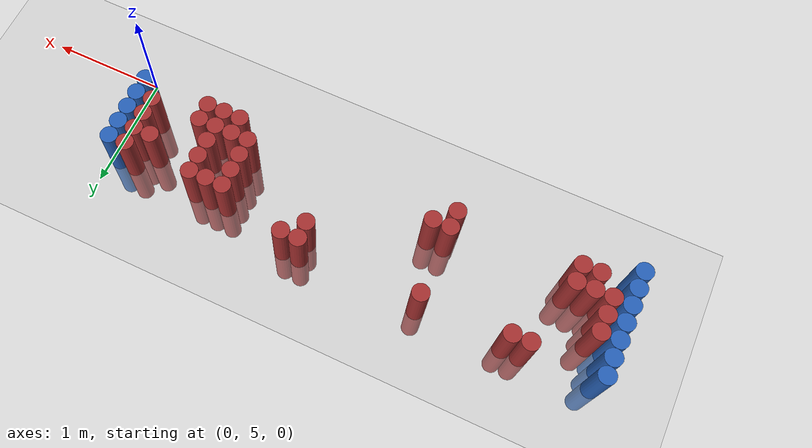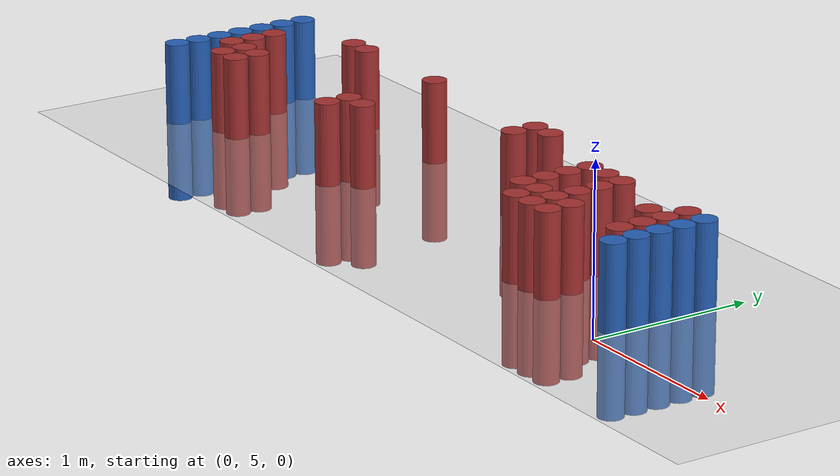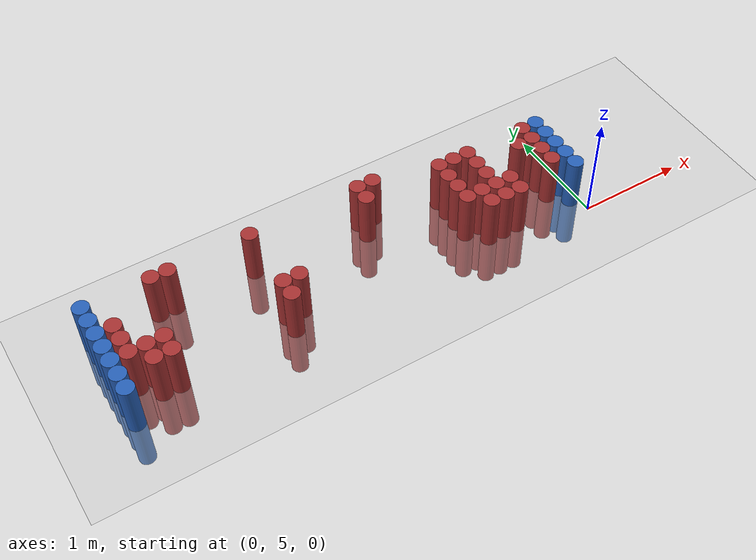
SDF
<sdf version="1.6">
 <world name="default">
  <model name="ground_plane">
   <static>1</static>
   <link name="link">
    <collision name="collision">
     <geometry><plane><normal>0 0 1</normal><size>100 100</size></plane></geometry>
     <surface><friction><ode><mu>100</mu><mu2>50</mu2></ode></friction></surface>
    </collision>
    <visual name="visual">
     <cast_shadows>0</cast_shadows>
     <geometry><plane><normal>0 0 1</normal><size>100 100</size></plane></geometry>
     <material>
      <script><uri>file://media/materials/scripts/gazebo.material</uri><name>Gazebo/Grey</name></script>
     </material>
    </visual>
   </link>
  </model>
  <model name="unit_cylinder_95">
   <static>1</static>
   <pose>-4.425000 5.025000 0.000000 0.000000 0.000000 0.000000</pose>
   <link name="link">
    <inertial>
     <mass>1</mass>
     <inertia><ixx>0.145833</ixx><ixy>0</ixy><ixz>0</ixz><iyy>0.145833</iyy><iyz>0</iyz><izz>0.125</izz></inertia>
    </inertial>
    <collision name="collision">
     <geometry><cylinder><radius>0.075000</radius><length>1</length></cylinder></geometry>
    </collision>
    <visual name="visual">
     <geometry><cylinder><radius>0.075000</radius><length>1</length></cylinder></geometry>
     <material>
      <ambient>0.152000 0.379000 0.720000 1</ambient>
      <diffuse>0.152000 0.379000 0.720000 1</diffuse>
     </material>
     <material>
      <script><name>Gazebo/Grey</name><uri>file://media/materials/scripts/gazebo.material</uri></script>
     </material>
    </visual>
   </link>
  </model>
  <model name="unit_cylinder_96">
   <static>1</static>
   <pose>-4.425000 5.175000 0.000000 0.000000 0.000000 0.000000</pose>
   <link name="link">
    <inertial>
     <mass>1</mass>
     <inertia><ixx>0.145833</ixx><ixy>0</ixy><ixz>0</ixz><iyy>0.145833</iyy><iyz>0</iyz><izz>0.125</izz></inertia>
    </inertial>
    <collision name="collision">
     <geometry><cylinder><radius>0.075000</radius><length>1</length></cylinder></geometry>
    </collision>
    <visual name="visual">
     <geometry><cylinder><radius>0.075000</radius><length>1</length></cylinder></geometry>
     <material>
      <ambient>0.152000 0.379000 0.720000 1</ambient>
      <diffuse>0.152000 0.379000 0.720000 1</diffuse>
     </material>
     <material>
      <script><name>Gazebo/Grey</name><uri>file://media/materials/scripts/gazebo.material</uri></script>
     </material>
    </visual>
   </link>
  </model>
  <model name="unit_cylinder_97">
   <static>1</static>
   <pose>-4.425000 5.325000 0.000000 0.000000 0.000000 0.000000</pose>
   <link name="link">
    <inertial>
     <mass>1</mass>
     <inertia><ixx>0.145833</ixx><ixy>0</ixy><ixz>0</ixz><iyy>0.145833</iyy><iyz>0</iyz><izz>0.125</izz></inertia>
    </inertial>
    <collision name="collision">
     <geometry><cylinder><radius>0.075000</radius><length>1</length></cylinder></geometry>
    </collision>
    <visual name="visual">
     <geometry><cylinder><radius>0.075000</radius><length>1</length></cylinder></geometry>
     <material>
      <ambient>0.152000 0.379000 0.720000 1</ambient>
      <diffuse>0.152000 0.379000 0.720000 1</diffuse>
     </material>
     <material>
      <script><name>Gazebo/Grey</name><uri>file://media/materials/scripts/gazebo.material</uri></script>
     </material>
    </visual>
   </link>
  </model>
  <model name="unit_cylinder_98">
   <static>1</static>
   <pose>-4.425000 5.475000 0.000000 0.000000 0.000000 0.000000</pose>
   <link name="link">
    <inertial>
     <mass>1</mass>
     <inertia><ixx>0.145833</ixx><ixy>0</ixy><ixz>0</ixz><iyy>0.145833</iyy><iyz>0</iyz><izz>0.125</izz></inertia>
    </inertial>
    <collision name="collision">
     <geometry><cylinder><radius>0.075000</radius><length>1</length></cylinder></geometry>
    </collision>
    <visual name="visual">
     <geometry><cylinder><radius>0.075000</radius><length>1</length></cylinder></geometry>
     <material>
      <ambient>0.152000 0.379000 0.720000 1</ambient>
      <diffuse>0.152000 0.379000 0.720000 1</diffuse>
     </material>
     <material>
      <script><name>Gazebo/Grey</name><uri>file://media/materials/scripts/gazebo.material</uri></script>
     </material>
    </visual>
   </link>
  </model>
  <model name="unit_cylinder_99">
   <static>1</static>
   <pose>-4.425000 5.625000 0.000000 0.000000 0.000000 0.000000</pose>
   <link name="link">
    <inertial>
     <mass>1</mass>
     <inertia><ixx>0.145833</ixx><ixy>0</ixy><ixz>0</ixz><iyy>0.145833</iyy><iyz>0</iyz><izz>0.125</izz></inertia>
    </inertial>
    <collision name="collision">
     <geometry><cylinder><radius>0.075000</radius><length>1</length></cylinder></geometry>
    </collision>
    <visual name="visual">
     <geometry><cylinder><radius>0.075000</radius><length>1</length></cylinder></geometry>
     <material>
      <ambient>0.152000 0.379000 0.720000 1</ambient>
      <diffuse>0.152000 0.379000 0.720000 1</diffuse>
     </material>
     <material>
      <script><name>Gazebo/Grey</name><uri>file://media/materials/scripts/gazebo.material</uri></script>
     </material>
    </visual>
   </link>
  </model>
  <model name="unit_cylinder_100">
   <static>1</static>
   <pose>-4.425000 5.775000 0.000000 0.000000 0.000000 0.000000</pose>
   <link name="link">
    <inertial>
     <mass>1</mass>
     <inertia><ixx>0.145833</ixx><ixy>0</ixy><ixz>0</ixz><iyy>0.145833</iyy><iyz>0</iyz><izz>0.125</izz></inertia>
    </inertial>
    <collision name="collision">
     <geometry><cylinder><radius>0.075000</radius><length>1</length></cylinder></geometry>
    </collision>
    <visual name="visual">
     <geometry><cylinder><radius>0.075000</radius><length>1</length></cylinder></geometry>
     <material>
      <ambient>0.152000 0.379000 0.720000 1</ambient>
      <diffuse>0.152000 0.379000 0.720000 1</diffuse>
     </material>
     <material>
      <script><name>Gazebo/Grey</name><uri>file://media/materials/scripts/gazebo.material</uri></script>
     </material>
    </visual>
   </link>
  </model>
  <model name="unit_cylinder_101">
   <static>1</static>
   <pose>-4.425000 5.925000 0.000000 0.000000 0.000000 0.000000</pose>
   <link name="link">
    <inertial>
     <mass>1</mass>
     <inertia><ixx>0.145833</ixx><ixy>0</ixy><ixz>0</ixz><iyy>0.145833</iyy><iyz>0</iyz><izz>0.125</izz></inertia>
    </inertial>
    <collision name="collision">
     <geometry><cylinder><radius>0.075000</radius><length>1</length></cylinder></geometry>
    </collision>
    <visual name="visual">
     <geometry><cylinder><radius>0.075000</radius><length>1</length></cylinder></geometry>
     <material>
      <ambient>0.152000 0.379000 0.720000 1</ambient>
      <diffuse>0.152000 0.379000 0.720000 1</diffuse>
     </material>
     <material>
      <script><name>Gazebo/Grey</name><uri>file://media/materials/scripts/gazebo.material</uri></script>
     </material>
    </visual>
   </link>
  </model>
  <model name="unit_cylinder_126">
   <static>1</static>
   <pose>-4.275000 5.325000 0.000000 0.000000 0.000000 0.000000</pose>
   <link name="link">
    <inertial>
     <mass>1</mass>
     <inertia><ixx>0.145833</ixx><ixy>0</ixy><ixz>0</ixz><iyy>0.145833</iyy><iyz>0</iyz><izz>0.125</izz></inertia>
    </inertial>
    <collision name="collision">
     <geometry><cylinder><radius>0.075000</radius><length>1</length></cylinder></geometry>
    </collision>
    <visual name="visual">
     <geometry><cylinder><radius>0.075000</radius><length>1</length></cylinder></geometry>
     <material>
      <ambient>0.648000 0.192000 0.192000 1</ambient>
      <diffuse>0.648000 0.192000 0.192000 1</diffuse>
     </material>
     <material>
      <script><name>Gazebo/Grey</name><uri>file://media/materials/scripts/gazebo.material</uri></script>
     </material>
    </visual>
   </link>
  </model>
  <model name="unit_cylinder_127">
   <static>1</static>
   <pose>-4.275000 5.475000 0.000000 0.000000 0.000000 0.000000</pose>
   <link name="link">
    <inertial>
     <mass>1</mass>
     <inertia><ixx>0.145833</ixx><ixy>0</ixy><ixz>0</ixz><iyy>0.145833</iyy><iyz>0</iyz><izz>0.125</izz></inertia>
    </inertial>
    <collision name="collision">
     <geometry><cylinder><radius>0.075000</radius><length>1</length></cylinder></geometry>
    </collision>
    <visual name="visual">
     <geometry><cylinder><radius>0.075000</radius><length>1</length></cylinder></geometry>
     <material>
      <ambient>0.648000 0.192000 0.192000 1</ambient>
      <diffuse>0.648000 0.192000 0.192000 1</diffuse>
     </material>
     <material>
      <script><name>Gazebo/Grey</name><uri>file://media/materials/scripts/gazebo.material</uri></script>
     </material>
    </visual>
   </link>
  </model>
  <model name="unit_cylinder_128">
   <static>1</static>
   <pose>-4.275000 5.625000 0.000000 0.000000 0.000000 0.000000</pose>
   <link name="link">
    <inertial>
     <mass>1</mass>
     <inertia><ixx>0.145833</ixx><ixy>0</ixy><ixz>0</ixz><iyy>0.145833</iyy><iyz>0</iyz><izz>0.125</izz></inertia>
    </inertial>
    <collision name="collision">
     <geometry><cylinder><radius>0.075000</radius><length>1</length></cylinder></geometry>
    </collision>
    <visual name="visual">
     <geometry><cylinder><radius>0.075000</radius><length>1</length></cylinder></geometry>
     <material>
      <ambient>0.648000 0.192000 0.192000 1</ambient>
      <diffuse>0.648000 0.192000 0.192000 1</diffuse>
     </material>
     <material>
      <script><name>Gazebo/Grey</name><uri>file://media/materials/scripts/gazebo.material</uri></script>
     </material>
    </visual>
   </link>
  </model>
  <model name="unit_cylinder_148">
   <static>1</static>
   <pose>-4.125000 5.175000 0.000000 0.000000 0.000000 0.000000</pose>
   <link name="link">
    <inertial>
     <mass>1</mass>
     <inertia><ixx>0.145833</ixx><ixy>0</ixy><ixz>0</ixz><iyy>0.145833</iyy><iyz>0</iyz><izz>0.125</izz></inertia>
    </inertial>
    <collision name="collision">
     <geometry><cylinder><radius>0.075000</radius><length>1</length></cylinder></geometry>
    </collision>
    <visual name="visual">
     <geometry><cylinder><radius>0.075000</radius><length>1</length></cylinder></geometry>
     <material>
      <ambient>0.648000 0.192000 0.192000 1</ambient>
      <diffuse>0.648000 0.192000 0.192000 1</diffuse>
     </material>
     <material>
      <script><name>Gazebo/Grey</name><uri>file://media/materials/scripts/gazebo.material</uri></script>
     </material>
    </visual>
   </link>
  </model>
  <model name="unit_cylinder_149">
   <static>1</static>
   <pose>-4.125000 5.325000 0.000000 0.000000 0.000000 0.000000</pose>
   <link name="link">
    <inertial>
     <mass>1</mass>
     <inertia><ixx>0.145833</ixx><ixy>0</ixy><ixz>0</ixz><iyy>0.145833</iyy><iyz>0</iyz><izz>0.125</izz></inertia>
    </inertial>
    <collision name="collision">
     <geometry><cylinder><radius>0.075000</radius><length>1</length></cylinder></geometry>
    </collision>
    <visual name="visual">
     <geometry><cylinder><radius>0.075000</radius><length>1</length></cylinder></geometry>
     <material>
      <ambient>0.648000 0.192000 0.192000 1</ambient>
      <diffuse>0.648000 0.192000 0.192000 1</diffuse>
     </material>
     <material>
      <script><name>Gazebo/Grey</name><uri>file://media/materials/scripts/gazebo.material</uri></script>
     </material>
    </visual>
   </link>
  </model>
  <model name="unit_cylinder_154">
   <static>1</static>
   <pose>-3.975000 5.175000 0.000000 0.000000 0.000000 0.000000</pose>
   <link name="link">
    <inertial>
     <mass>1</mass>
     <inertia><ixx>0.145833</ixx><ixy>0</ixy><ixz>0</ixz><iyy>0.145833</iyy><iyz>0</iyz><izz>0.125</izz></inertia>
    </inertial>
    <collision name="collision">
     <geometry><cylinder><radius>0.075000</radius><length>1</length></cylinder></geometry>
    </collision>
    <visual name="visual">
     <geometry><cylinder><radius>0.075000</radius><length>1</length></cylinder></geometry>
     <material>
      <ambient>0.648000 0.192000 0.192000 1</ambient>
      <diffuse>0.648000 0.192000 0.192000 1</diffuse>
     </material>
     <material>
      <script><name>Gazebo/Grey</name><uri>file://media/materials/scripts/gazebo.material</uri></script>
     </material>
    </visual>
   </link>
  </model>
  <model name="unit_cylinder_155">
   <static>1</static>
   <pose>-3.975000 5.325000 0.000000 0.000000 0.000000 0.000000</pose>
   <link name="link">
    <inertial>
     <mass>1</mass>
     <inertia><ixx>0.145833</ixx><ixy>0</ixy><ixz>0</ixz><iyy>0.145833</iyy><iyz>0</iyz><izz>0.125</izz></inertia>
    </inertial>
    <collision name="collision">
     <geometry><cylinder><radius>0.075000</radius><length>1</length></cylinder></geometry>
    </collision>
    <visual name="visual">
     <geometry><cylinder><radius>0.075000</radius><length>1</length></cylinder></geometry>
     <material>
      <ambient>0.648000 0.192000 0.192000 1</ambient>
      <diffuse>0.648000 0.192000 0.192000 1</diffuse>
     </material>
     <material>
      <script><name>Gazebo/Grey</name><uri>file://media/materials/scripts/gazebo.material</uri></script>
     </material>
    </visual>
   </link>
  </model>
  <model name="unit_cylinder_160">
   <static>1</static>
   <pose>-3.825000 5.925000 0.000000 0.000000 0.000000 0.000000</pose>
   <link name="link">
    <inertial>
     <mass>1</mass>
     <inertia><ixx>0.145833</ixx><ixy>0</ixy><ixz>0</ixz><iyy>0.145833</iyy><iyz>0</iyz><izz>0.125</izz></inertia>
    </inertial>
    <collision name="collision">
     <geometry><cylinder><radius>0.075000</radius><length>1</length></cylinder></geometry>
    </collision>
    <visual name="visual">
     <geometry><cylinder><radius>0.075000</radius><length>1</length></cylinder></geometry>
     <material>
      <ambient>0.648000 0.192000 0.192000 1</ambient>
      <diffuse>0.648000 0.192000 0.192000 1</diffuse>
     </material>
     <material>
      <script><name>Gazebo/Grey</name><uri>file://media/materials/scripts/gazebo.material</uri></script>
     </material>
    </visual>
   </link>
  </model>
  <model name="unit_cylinder_170">
   <static>1</static>
   <pose>-3.675000 5.925000 0.000000 0.000000 0.000000 0.000000</pose>
   <link name="link">
    <inertial>
     <mass>1</mass>
     <inertia><ixx>0.145833</ixx><ixy>0</ixy><ixz>0</ixz><iyy>0.145833</iyy><iyz>0</iyz><izz>0.125</izz></inertia>
    </inertial>
    <collision name="collision">
     <geometry><cylinder><radius>0.075000</radius><length>1</length></cylinder></geometry>
    </collision>
    <visual name="visual">
     <geometry><cylinder><radius>0.075000</radius><length>1</length></cylinder></geometry>
     <material>
      <ambient>0.648000 0.192000 0.192000 1</ambient>
      <diffuse>0.648000 0.192000 0.192000 1</diffuse>
     </material>
     <material>
      <script><name>Gazebo/Grey</name><uri>file://media/materials/scripts/gazebo.material</uri></script>
     </material>
    </visual>
   </link>
  </model>
  <model name="unit_cylinder_191">
   <static>1</static>
   <pose>-2.925000 5.175000 0.000000 0.000000 0.000000 0.000000</pose>
   <link name="link">
    <inertial>
     <mass>1</mass>
     <inertia><ixx>0.145833</ixx><ixy>0</ixy><ixz>0</ixz><iyy>0.145833</iyy><iyz>0</iyz><izz>0.125</izz></inertia>
    </inertial>
    <collision name="collision">
     <geometry><cylinder><radius>0.075000</radius><length>1</length></cylinder></geometry>
    </collision>
    <visual name="visual">
     <geometry><cylinder><radius>0.075000</radius><length>1</length></cylinder></geometry>
     <material>
      <ambient>0.648000 0.192000 0.192000 1</ambient>
      <diffuse>0.648000 0.192000 0.192000 1</diffuse>
     </material>
     <material>
      <script><name>Gazebo/Grey</name><uri>file://media/materials/scripts/gazebo.material</uri></script>
     </material>
    </visual>
   </link>
  </model>
  <model name="unit_cylinder_192">
   <static>1</static>
   <pose>-2.925000 5.325000 0.000000 0.000000 0.000000 0.000000</pose>
   <link name="link">
    <inertial>
     <mass>1</mass>
     <inertia><ixx>0.145833</ixx><ixy>0</ixy><ixz>0</ixz><iyy>0.145833</iyy><iyz>0</iyz><izz>0.125</izz></inertia>
    </inertial>
    <collision name="collision">
     <geometry><cylinder><radius>0.075000</radius><length>1</length></cylinder></geometry>
    </collision>
    <visual name="visual">
     <geometry><cylinder><radius>0.075000</radius><length>1</length></cylinder></geometry>
     <material>
      <ambient>0.648000 0.192000 0.192000 1</ambient>
      <diffuse>0.648000 0.192000 0.192000 1</diffuse>
     </material>
     <material>
      <script><name>Gazebo/Grey</name><uri>file://media/materials/scripts/gazebo.material</uri></script>
     </material>
    </visual>
   </link>
  </model>
  <model name="unit_cylinder_193">
   <static>1</static>
   <pose>-2.925000 5.925000 0.000000 0.000000 0.000000 0.000000</pose>
   <link name="link">
    <inertial>
     <mass>1</mass>
     <inertia><ixx>0.145833</ixx><ixy>0</ixy><ixz>0</ixz><iyy>0.145833</iyy><iyz>0</iyz><izz>0.125</izz></inertia>
    </inertial>
    <collision name="collision">
     <geometry><cylinder><radius>0.075000</radius><length>1</length></cylinder></geometry>
    </collision>
    <visual name="visual">
     <geometry><cylinder><radius>0.075000</radius><length>1</length></cylinder></geometry>
     <material>
      <ambient>0.648000 0.192000 0.192000 1</ambient>
      <diffuse>0.648000 0.192000 0.192000 1</diffuse>
     </material>
     <material>
      <script><name>Gazebo/Grey</name><uri>file://media/materials/scripts/gazebo.material</uri></script>
     </material>
    </visual>
   </link>
  </model>
  <model name="unit_cylinder_195">
   <static>1</static>
   <pose>-2.775000 5.325000 0.000000 0.000000 0.000000 0.000000</pose>
   <link name="link">
    <inertial>
     <mass>1</mass>
     <inertia><ixx>0.145833</ixx><ixy>0</ixy><ixz>0</ixz><iyy>0.145833</iyy><iyz>0</iyz><izz>0.125</izz></inertia>
    </inertial>
    <collision name="collision">
     <geometry><cylinder><radius>0.075000</radius><length>1</length></cylinder></geometry>
    </collision>
    <visual name="visual">
     <geometry><cylinder><radius>0.075000</radius><length>1</length></cylinder></geometry>
     <material>
      <ambient>0.648000 0.192000 0.192000 1</ambient>
      <diffuse>0.648000 0.192000 0.192000 1</diffuse>
     </material>
     <material>
      <script><name>Gazebo/Grey</name><uri>file://media/materials/scripts/gazebo.material</uri></script>
     </material>
    </visual>
   </link>
  </model>
  <model name="unit_cylinder_206">
   <static>1</static>
   <pose>-1.875000 5.775000 0.000000 0.000000 0.000000 0.000000</pose>
   <link name="link">
    <inertial>
     <mass>1</mass>
     <inertia><ixx>0.145833</ixx><ixy>0</ixy><ixz>0</ixz><iyy>0.145833</iyy><iyz>0</iyz><izz>0.125</izz></inertia>
    </inertial>
    <collision name="collision">
     <geometry><cylinder><radius>0.075000</radius><length>1</length></cylinder></geometry>
    </collision>
    <visual name="visual">
     <geometry><cylinder><radius>0.075000</radius><length>1</length></cylinder></geometry>
     <material>
      <ambient>0.648000 0.192000 0.192000 1</ambient>
      <diffuse>0.648000 0.192000 0.192000 1</diffuse>
     </material>
     <material>
      <script><name>Gazebo/Grey</name><uri>file://media/materials/scripts/gazebo.material</uri></script>
     </material>
    </visual>
   </link>
  </model>
  <model name="unit_cylinder_207">
   <static>1</static>
   <pose>-1.875000 5.925000 0.000000 0.000000 0.000000 0.000000</pose>
   <link name="link">
    <inertial>
     <mass>1</mass>
     <inertia><ixx>0.145833</ixx><ixy>0</ixy><ixz>0</ixz><iyy>0.145833</iyy><iyz>0</iyz><izz>0.125</izz></inertia>
    </inertial>
    <collision name="collision">
     <geometry><cylinder><radius>0.075000</radius><length>1</length></cylinder></geometry>
    </collision>
    <visual name="visual">
     <geometry><cylinder><radius>0.075000</radius><length>1</length></cylinder></geometry>
     <material>
      <ambient>0.648000 0.192000 0.192000 1</ambient>
      <diffuse>0.648000 0.192000 0.192000 1</diffuse>
     </material>
     <material>
      <script><name>Gazebo/Grey</name><uri>file://media/materials/scripts/gazebo.material</uri></script>
     </material>
    </visual>
   </link>
  </model>
  <model name="unit_cylinder_212">
   <static>1</static>
   <pose>-1.725000 5.925000 0.000000 0.000000 0.000000 0.000000</pose>
   <link name="link">
    <inertial>
     <mass>1</mass>
     <inertia><ixx>0.145833</ixx><ixy>0</ixy><ixz>0</ixz><iyy>0.145833</iyy><iyz>0</iyz><izz>0.125</izz></inertia>
    </inertial>
    <collision name="collision">
     <geometry><cylinder><radius>0.075000</radius><length>1</length></cylinder></geometry>
    </collision>
    <visual name="visual">
     <geometry><cylinder><radius>0.075000</radius><length>1</length></cylinder></geometry>
     <material>
      <ambient>0.648000 0.192000 0.192000 1</ambient>
      <diffuse>0.648000 0.192000 0.192000 1</diffuse>
     </material>
     <material>
      <script><name>Gazebo/Grey</name><uri>file://media/materials/scripts/gazebo.material</uri></script>
     </material>
    </visual>
   </link>
  </model>
  <model name="unit_cylinder_237">
   <static>1</static>
   <pose>-1.125000 5.325000 0.000000 0.000000 0.000000 0.000000</pose>
   <link name="link">
    <inertial>
     <mass>1</mass>
     <inertia><ixx>0.145833</ixx><ixy>0</ixy><ixz>0</ixz><iyy>0.145833</iyy><iyz>0</iyz><izz>0.125</izz></inertia>
    </inertial>
    <collision name="collision">
     <geometry><cylinder><radius>0.075000</radius><length>1</length></cylinder></geometry>
    </collision>
    <visual name="visual">
     <geometry><cylinder><radius>0.075000</radius><length>1</length></cylinder></geometry>
     <material>
      <ambient>0.648000 0.192000 0.192000 1</ambient>
      <diffuse>0.648000 0.192000 0.192000 1</diffuse>
     </material>
     <material>
      <script><name>Gazebo/Grey</name><uri>file://media/materials/scripts/gazebo.material</uri></script>
     </material>
    </visual>
   </link>
  </model>
  <model name="unit_cylinder_238">
   <static>1</static>
   <pose>-1.125000 5.475000 0.000000 0.000000 0.000000 0.000000</pose>
   <link name="link">
    <inertial>
     <mass>1</mass>
     <inertia><ixx>0.145833</ixx><ixy>0</ixy><ixz>0</ixz><iyy>0.145833</iyy><iyz>0</iyz><izz>0.125</izz></inertia>
    </inertial>
    <collision name="collision">
     <geometry><cylinder><radius>0.075000</radius><length>1</length></cylinder></geometry>
    </collision>
    <visual name="visual">
     <geometry><cylinder><radius>0.075000</radius><length>1</length></cylinder></geometry>
     <material>
      <ambient>0.648000 0.192000 0.192000 1</ambient>
      <diffuse>0.648000 0.192000 0.192000 1</diffuse>
     </material>
     <material>
      <script><name>Gazebo/Grey</name><uri>file://media/materials/scripts/gazebo.material</uri></script>
     </material>
    </visual>
   </link>
  </model>
  <model name="unit_cylinder_239">
   <static>1</static>
   <pose>-1.125000 5.625000 0.000000 0.000000 0.000000 0.000000</pose>
   <link name="link">
    <inertial>
     <mass>1</mass>
     <inertia><ixx>0.145833</ixx><ixy>0</ixy><ixz>0</ixz><iyy>0.145833</iyy><iyz>0</iyz><izz>0.125</izz></inertia>
    </inertial>
    <collision name="collision">
     <geometry><cylinder><radius>0.075000</radius><length>1</length></cylinder></geometry>
    </collision>
    <visual name="visual">
     <geometry><cylinder><radius>0.075000</radius><length>1</length></cylinder></geometry>
     <material>
      <ambient>0.648000 0.192000 0.192000 1</ambient>
      <diffuse>0.648000 0.192000 0.192000 1</diffuse>
     </material>
     <material>
      <script><name>Gazebo/Grey</name><uri>file://media/materials/scripts/gazebo.material</uri></script>
     </material>
    </visual>
   </link>
  </model>
  <model name="unit_cylinder_240">
   <static>1</static>
   <pose>-1.125000 5.775000 0.000000 0.000000 0.000000 0.000000</pose>
   <link name="link">
    <inertial>
     <mass>1</mass>
     <inertia><ixx>0.145833</ixx><ixy>0</ixy><ixz>0</ixz><iyy>0.145833</iyy><iyz>0</iyz><izz>0.125</izz></inertia>
    </inertial>
    <collision name="collision">
     <geometry><cylinder><radius>0.075000</radius><length>1</length></cylinder></geometry>
    </collision>
    <visual name="visual">
     <geometry><cylinder><radius>0.075000</radius><length>1</length></cylinder></geometry>
     <material>
      <ambient>0.648000 0.192000 0.192000 1</ambient>
      <diffuse>0.648000 0.192000 0.192000 1</diffuse>
     </material>
     <material>
      <script><name>Gazebo/Grey</name><uri>file://media/materials/scripts/gazebo.material</uri></script>
     </material>
    </visual>
   </link>
  </model>
  <model name="unit_cylinder_249">
   <static>1</static>
   <pose>-0.975000 5.175000 0.000000 0.000000 0.000000 0.000000</pose>
   <link name="link">
    <inertial>
     <mass>1</mass>
     <inertia><ixx>0.145833</ixx><ixy>0</ixy><ixz>0</ixz><iyy>0.145833</iyy><iyz>0</iyz><izz>0.125</izz></inertia>
    </inertial>
    <collision name="collision">
     <geometry><cylinder><radius>0.075000</radius><length>1</length></cylinder></geometry>
    </collision>
    <visual name="visual">
     <geometry><cylinder><radius>0.075000</radius><length>1</length></cylinder></geometry>
     <material>
      <ambient>0.648000 0.192000 0.192000 1</ambient>
      <diffuse>0.648000 0.192000 0.192000 1</diffuse>
     </material>
     <material>
      <script><name>Gazebo/Grey</name><uri>file://media/materials/scripts/gazebo.material</uri></script>
     </material>
    </visual>
   </link>
  </model>
  <model name="unit_cylinder_250">
   <static>1</static>
   <pose>-0.975000 5.325000 0.000000 0.000000 0.000000 0.000000</pose>
   <link name="link">
    <inertial>
     <mass>1</mass>
     <inertia><ixx>0.145833</ixx><ixy>0</ixy><ixz>0</ixz><iyy>0.145833</iyy><iyz>0</iyz><izz>0.125</izz></inertia>
    </inertial>
    <collision name="collision">
     <geometry><cylinder><radius>0.075000</radius><length>1</length></cylinder></geometry>
    </collision>
    <visual name="visual">
     <geometry><cylinder><radius>0.075000</radius><length>1</length></cylinder></geometry>
     <material>
      <ambient>0.648000 0.192000 0.192000 1</ambient>
      <diffuse>0.648000 0.192000 0.192000 1</diffuse>
     </material>
     <material>
      <script><name>Gazebo/Grey</name><uri>file://media/materials/scripts/gazebo.material</uri></script>
     </material>
    </visual>
   </link>
  </model>
  <model name="unit_cylinder_251">
   <static>1</static>
   <pose>-0.975000 5.775000 0.000000 0.000000 0.000000 0.000000</pose>
   <link name="link">
    <inertial>
     <mass>1</mass>
     <inertia><ixx>0.145833</ixx><ixy>0</ixy><ixz>0</ixz><iyy>0.145833</iyy><iyz>0</iyz><izz>0.125</izz></inertia>
    </inertial>
    <collision name="collision">
     <geometry><cylinder><radius>0.075000</radius><length>1</length></cylinder></geometry>
    </collision>
    <visual name="visual">
     <geometry><cylinder><radius>0.075000</radius><length>1</length></cylinder></geometry>
     <material>
      <ambient>0.648000 0.192000 0.192000 1</ambient>
      <diffuse>0.648000 0.192000 0.192000 1</diffuse>
     </material>
     <material>
      <script><name>Gazebo/Grey</name><uri>file://media/materials/scripts/gazebo.material</uri></script>
     </material>
    </visual>
   </link>
  </model>
  <model name="unit_cylinder_264">
   <static>1</static>
   <pose>-0.825000 5.175000 0.000000 0.000000 0.000000 0.000000</pose>
   <link name="link">
    <inertial>
     <mass>1</mass>
     <inertia><ixx>0.145833</ixx><ixy>0</ixy><ixz>0</ixz><iyy>0.145833</iyy><iyz>0</iyz><izz>0.125</izz></inertia>
    </inertial>
    <collision name="collision">
     <geometry><cylinder><radius>0.075000</radius><length>1</length></cylinder></geometry>
    </collision>
    <visual name="visual">
     <geometry><cylinder><radius>0.075000</radius><length>1</length></cylinder></geometry>
     <material>
      <ambient>0.648000 0.192000 0.192000 1</ambient>
      <diffuse>0.648000 0.192000 0.192000 1</diffuse>
     </material>
     <material>
      <script><name>Gazebo/Grey</name><uri>file://media/materials/scripts/gazebo.material</uri></script>
     </material>
    </visual>
   </link>
  </model>
  <model name="unit_cylinder_265">
   <static>1</static>
   <pose>-0.825000 5.325000 0.000000 0.000000 0.000000 0.000000</pose>
   <link name="link">
    <inertial>
     <mass>1</mass>
     <inertia><ixx>0.145833</ixx><ixy>0</ixy><ixz>0</ixz><iyy>0.145833</iyy><iyz>0</iyz><izz>0.125</izz></inertia>
    </inertial>
    <collision name="collision">
     <geometry><cylinder><radius>0.075000</radius><length>1</length></cylinder></geometry>
    </collision>
    <visual name="visual">
     <geometry><cylinder><radius>0.075000</radius><length>1</length></cylinder></geometry>
     <material>
      <ambient>0.648000 0.192000 0.192000 1</ambient>
      <diffuse>0.648000 0.192000 0.192000 1</diffuse>
     </material>
     <material>
      <script><name>Gazebo/Grey</name><uri>file://media/materials/scripts/gazebo.material</uri></script>
     </material>
    </visual>
   </link>
  </model>
  <model name="unit_cylinder_266">
   <static>1</static>
   <pose>-0.825000 5.475000 0.000000 0.000000 0.000000 0.000000</pose>
   <link name="link">
    <inertial>
     <mass>1</mass>
     <inertia><ixx>0.145833</ixx><ixy>0</ixy><ixz>0</ixz><iyy>0.145833</iyy><iyz>0</iyz><izz>0.125</izz></inertia>
    </inertial>
    <collision name="collision">
     <geometry><cylinder><radius>0.075000</radius><length>1</length></cylinder></geometry>
    </collision>
    <visual name="visual">
     <geometry><cylinder><radius>0.075000</radius><length>1</length></cylinder></geometry>
     <material>
      <ambient>0.648000 0.192000 0.192000 1</ambient>
      <diffuse>0.648000 0.192000 0.192000 1</diffuse>
     </material>
     <material>
      <script><name>Gazebo/Grey</name><uri>file://media/materials/scripts/gazebo.material</uri></script>
     </material>
    </visual>
   </link>
  </model>
  <model name="unit_cylinder_267">
   <static>1</static>
   <pose>-0.825000 5.625000 0.000000 0.000000 0.000000 0.000000</pose>
   <link name="link">
    <inertial>
     <mass>1</mass>
     <inertia><ixx>0.145833</ixx><ixy>0</ixy><ixz>0</ixz><iyy>0.145833</iyy><iyz>0</iyz><izz>0.125</izz></inertia>
    </inertial>
    <collision name="collision">
     <geometry><cylinder><radius>0.075000</radius><length>1</length></cylinder></geometry>
    </collision>
    <visual name="visual">
     <geometry><cylinder><radius>0.075000</radius><length>1</length></cylinder></geometry>
     <material>
      <ambient>0.648000 0.192000 0.192000 1</ambient>
      <diffuse>0.648000 0.192000 0.192000 1</diffuse>
     </material>
     <material>
      <script><name>Gazebo/Grey</name><uri>file://media/materials/scripts/gazebo.material</uri></script>
     </material>
    </visual>
   </link>
  </model>
  <model name="unit_cylinder_268">
   <static>1</static>
   <pose>-0.825000 5.775000 0.000000 0.000000 0.000000 0.000000</pose>
   <link name="link">
    <inertial>
     <mass>1</mass>
     <inertia><ixx>0.145833</ixx><ixy>0</ixy><ixz>0</ixz><iyy>0.145833</iyy><iyz>0</iyz><izz>0.125</izz></inertia>
    </inertial>
    <collision name="collision">
     <geometry><cylinder><radius>0.075000</radius><length>1</length></cylinder></geometry>
    </collision>
    <visual name="visual">
     <geometry><cylinder><radius>0.075000</radius><length>1</length></cylinder></geometry>
     <material>
      <ambient>0.648000 0.192000 0.192000 1</ambient>
      <diffuse>0.648000 0.192000 0.192000 1</diffuse>
     </material>
     <material>
      <script><name>Gazebo/Grey</name><uri>file://media/materials/scripts/gazebo.material</uri></script>
     </material>
    </visual>
   </link>
  </model>
  <model name="unit_cylinder_275">
   <static>1</static>
   <pose>-0.675000 5.175000 0.000000 0.000000 0.000000 0.000000</pose>
   <link name="link">
    <inertial>
     <mass>1</mass>
     <inertia><ixx>0.145833</ixx><ixy>0</ixy><ixz>0</ixz><iyy>0.145833</iyy><iyz>0</iyz><izz>0.125</izz></inertia>
    </inertial>
    <collision name="collision">
     <geometry><cylinder><radius>0.075000</radius><length>1</length></cylinder></geometry>
    </collision>
    <visual name="visual">
     <geometry><cylinder><radius>0.075000</radius><length>1</length></cylinder></geometry>
     <material>
      <ambient>0.648000 0.192000 0.192000 1</ambient>
      <diffuse>0.648000 0.192000 0.192000 1</diffuse>
     </material>
     <material>
      <script><name>Gazebo/Grey</name><uri>file://media/materials/scripts/gazebo.material</uri></script>
     </material>
    </visual>
   </link>
  </model>
  <model name="unit_cylinder_276">
   <static>1</static>
   <pose>-0.675000 5.325000 0.000000 0.000000 0.000000 0.000000</pose>
   <link name="link">
    <inertial>
     <mass>1</mass>
     <inertia><ixx>0.145833</ixx><ixy>0</ixy><ixz>0</ixz><iyy>0.145833</iyy><iyz>0</iyz><izz>0.125</izz></inertia>
    </inertial>
    <collision name="collision">
     <geometry><cylinder><radius>0.075000</radius><length>1</length></cylinder></geometry>
    </collision>
    <visual name="visual">
     <geometry><cylinder><radius>0.075000</radius><length>1</length></cylinder></geometry>
     <material>
      <ambient>0.648000 0.192000 0.192000 1</ambient>
      <diffuse>0.648000 0.192000 0.192000 1</diffuse>
     </material>
     <material>
      <script><name>Gazebo/Grey</name><uri>file://media/materials/scripts/gazebo.material</uri></script>
     </material>
    </visual>
   </link>
  </model>
  <model name="unit_cylinder_286">
   <static>1</static>
   <pose>-0.375000 5.625000 0.000000 0.000000 0.000000 0.000000</pose>
   <link name="link">
    <inertial>
     <mass>1</mass>
     <inertia><ixx>0.145833</ixx><ixy>0</ixy><ixz>0</ixz><iyy>0.145833</iyy><iyz>0</iyz><izz>0.125</izz></inertia>
    </inertial>
    <collision name="collision">
     <geometry><cylinder><radius>0.075000</radius><length>1</length></cylinder></geometry>
    </collision>
    <visual name="visual">
     <geometry><cylinder><radius>0.075000</radius><length>1</length></cylinder></geometry>
     <material>
      <ambient>0.648000 0.192000 0.192000 1</ambient>
      <diffuse>0.648000 0.192000 0.192000 1</diffuse>
     </material>
     <material>
      <script><name>Gazebo/Grey</name><uri>file://media/materials/scripts/gazebo.material</uri></script>
     </material>
    </visual>
   </link>
  </model>
  <model name="unit_cylinder_288">
   <static>1</static>
   <pose>-0.225000 5.325000 0.000000 0.000000 0.000000 0.000000</pose>
   <link name="link">
    <inertial>
     <mass>1</mass>
     <inertia><ixx>0.145833</ixx><ixy>0</ixy><ixz>0</ixz><iyy>0.145833</iyy><iyz>0</iyz><izz>0.125</izz></inertia>
    </inertial>
    <collision name="collision">
     <geometry><cylinder><radius>0.075000</radius><length>1</length></cylinder></geometry>
    </collision>
    <visual name="visual">
     <geometry><cylinder><radius>0.075000</radius><length>1</length></cylinder></geometry>
     <material>
      <ambient>0.648000 0.192000 0.192000 1</ambient>
      <diffuse>0.648000 0.192000 0.192000 1</diffuse>
     </material>
     <material>
      <script><name>Gazebo/Grey</name><uri>file://media/materials/scripts/gazebo.material</uri></script>
     </material>
    </visual>
   </link>
  </model>
  <model name="unit_cylinder_289">
   <static>1</static>
   <pose>-0.225000 5.475000 0.000000 0.000000 0.000000 0.000000</pose>
   <link name="link">
    <inertial>
     <mass>1</mass>
     <inertia><ixx>0.145833</ixx><ixy>0</ixy><ixz>0</ixz><iyy>0.145833</iyy><iyz>0</iyz><izz>0.125</izz></inertia>
    </inertial>
    <collision name="collision">
     <geometry><cylinder><radius>0.075000</radius><length>1</length></cylinder></geometry>
    </collision>
    <visual name="visual">
     <geometry><cylinder><radius>0.075000</radius><length>1</length></cylinder></geometry>
     <material>
      <ambient>0.648000 0.192000 0.192000 1</ambient>
      <diffuse>0.648000 0.192000 0.192000 1</diffuse>
     </material>
     <material>
      <script><name>Gazebo/Grey</name><uri>file://media/materials/scripts/gazebo.material</uri></script>
     </material>
    </visual>
   </link>
  </model>
  <model name="unit_cylinder_290">
   <static>1</static>
   <pose>-0.225000 5.625000 0.000000 0.000000 0.000000 0.000000</pose>
   <link name="link">
    <inertial>
     <mass>1</mass>
     <inertia><ixx>0.145833</ixx><ixy>0</ixy><ixz>0</ixz><iyy>0.145833</iyy><iyz>0</iyz><izz>0.125</izz></inertia>
    </inertial>
    <collision name="collision">
     <geometry><cylinder><radius>0.075000</radius><length>1</length></cylinder></geometry>
    </collision>
    <visual name="visual">
     <geometry><cylinder><radius>0.075000</radius><length>1</length></cylinder></geometry>
     <material>
      <ambient>0.648000 0.192000 0.192000 1</ambient>
      <diffuse>0.648000 0.192000 0.192000 1</diffuse>
     </material>
     <material>
      <script><name>Gazebo/Grey</name><uri>file://media/materials/scripts/gazebo.material</uri></script>
     </material>
    </visual>
   </link>
  </model>
  <model name="unit_cylinder_291">
   <static>1</static>
   <pose>-0.225000 5.775000 0.000000 0.000000 0.000000 0.000000</pose>
   <link name="link">
    <inertial>
     <mass>1</mass>
     <inertia><ixx>0.145833</ixx><ixy>0</ixy><ixz>0</ixz><iyy>0.145833</iyy><iyz>0</iyz><izz>0.125</izz></inertia>
    </inertial>
    <collision name="collision">
     <geometry><cylinder><radius>0.075000</radius><length>1</length></cylinder></geometry>
    </collision>
    <visual name="visual">
     <geometry><cylinder><radius>0.075000</radius><length>1</length></cylinder></geometry>
     <material>
      <ambient>0.648000 0.192000 0.192000 1</ambient>
      <diffuse>0.648000 0.192000 0.192000 1</diffuse>
     </material>
     <material>
      <script><name>Gazebo/Grey</name><uri>file://media/materials/scripts/gazebo.material</uri></script>
     </material>
    </visual>
   </link>
  </model>
  <model name="unit_cylinder_302">
   <static>1</static>
   <pose>-0.075000 5.175000 0.000000 0.000000 0.000000 0.000000</pose>
   <link name="link">
    <inertial>
     <mass>1</mass>
     <inertia><ixx>0.145833</ixx><ixy>0</ixy><ixz>0</ixz><iyy>0.145833</iyy><iyz>0</iyz><izz>0.125</izz></inertia>
    </inertial>
    <collision name="collision">
     <geometry><cylinder><radius>0.075000</radius><length>1</length></cylinder></geometry>
    </collision>
    <visual name="visual">
     <geometry><cylinder><radius>0.075000</radius><length>1</length></cylinder></geometry>
     <material>
      <ambient>0.152000 0.379000 0.720000 1</ambient>
      <diffuse>0.152000 0.379000 0.720000 1</diffuse>
     </material>
     <material>
      <script><name>Gazebo/Grey</name><uri>file://media/materials/scripts/gazebo.material</uri></script>
     </material>
    </visual>
   </link>
  </model>
  <model name="unit_cylinder_303">
   <static>1</static>
   <pose>-0.075000 5.325000 0.000000 0.000000 0.000000 0.000000</pose>
   <link name="link">
    <inertial>
     <mass>1</mass>
     <inertia><ixx>0.145833</ixx><ixy>0</ixy><ixz>0</ixz><iyy>0.145833</iyy><iyz>0</iyz><izz>0.125</izz></inertia>
    </inertial>
    <collision name="collision">
     <geometry><cylinder><radius>0.075000</radius><length>1</length></cylinder></geometry>
    </collision>
    <visual name="visual">
     <geometry><cylinder><radius>0.075000</radius><length>1</length></cylinder></geometry>
     <material>
      <ambient>0.152000 0.379000 0.720000 1</ambient>
      <diffuse>0.152000 0.379000 0.720000 1</diffuse>
     </material>
     <material>
      <script><name>Gazebo/Grey</name><uri>file://media/materials/scripts/gazebo.material</uri></script>
     </material>
    </visual>
   </link>
  </model>
  <model name="unit_cylinder_304">
   <static>1</static>
   <pose>-0.075000 5.475000 0.000000 0.000000 0.000000 0.000000</pose>
   <link name="link">
    <inertial>
     <mass>1</mass>
     <inertia><ixx>0.145833</ixx><ixy>0</ixy><ixz>0</ixz><iyy>0.145833</iyy><iyz>0</iyz><izz>0.125</izz></inertia>
    </inertial>
    <collision name="collision">
     <geometry><cylinder><radius>0.075000</radius><length>1</length></cylinder></geometry>
    </collision>
    <visual name="visual">
     <geometry><cylinder><radius>0.075000</radius><length>1</length></cylinder></geometry>
     <material>
      <ambient>0.152000 0.379000 0.720000 1</ambient>
      <diffuse>0.152000 0.379000 0.720000 1</diffuse>
     </material>
     <material>
      <script><name>Gazebo/Grey</name><uri>file://media/materials/scripts/gazebo.material</uri></script>
     </material>
    </visual>
   </link>
  </model>
  <model name="unit_cylinder_305">
   <static>1</static>
   <pose>-0.075000 5.625000 0.000000 0.000000 0.000000 0.000000</pose>
   <link name="link">
    <inertial>
     <mass>1</mass>
     <inertia><ixx>0.145833</ixx><ixy>0</ixy><ixz>0</ixz><iyy>0.145833</iyy><iyz>0</iyz><izz>0.125</izz></inertia>
    </inertial>
    <collision name="collision">
     <geometry><cylinder><radius>0.075000</radius><length>1</length></cylinder></geometry>
    </collision>
    <visual name="visual">
     <geometry><cylinder><radius>0.075000</radius><length>1</length></cylinder></geometry>
     <material>
      <ambient>0.152000 0.379000 0.720000 1</ambient>
      <diffuse>0.152000 0.379000 0.720000 1</diffuse>
     </material>
     <material>
      <script><name>Gazebo/Grey</name><uri>file://media/materials/scripts/gazebo.material</uri></script>
     </material>
    </visual>
   </link>
  </model>
  <model name="unit_cylinder_306">
   <static>1</static>
   <pose>-0.075000 5.775000 0.000000 0.000000 0.000000 0.000000</pose>
   <link name="link">
    <inertial>
     <mass>1</mass>
     <inertia><ixx>0.145833</ixx><ixy>0</ixy><ixz>0</ixz><iyy>0.145833</iyy><iyz>0</iyz><izz>0.125</izz></inertia>
    </inertial>
    <collision name="collision">
     <geometry><cylinder><radius>0.075000</radius><length>1</length></cylinder></geometry>
    </collision>
    <visual name="visual">
     <geometry><cylinder><radius>0.075000</radius><length>1</length></cylinder></geometry>
     <material>
      <ambient>0.152000 0.379000 0.720000 1</ambient>
      <diffuse>0.152000 0.379000 0.720000 1</diffuse>
     </material>
     <material>
      <script><name>Gazebo/Grey</name><uri>file://media/materials/scripts/gazebo.material</uri></script>
     </material>
    </visual>
   </link>
  </model>
 </world>
</sdf>
